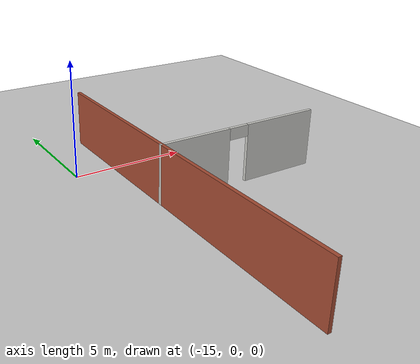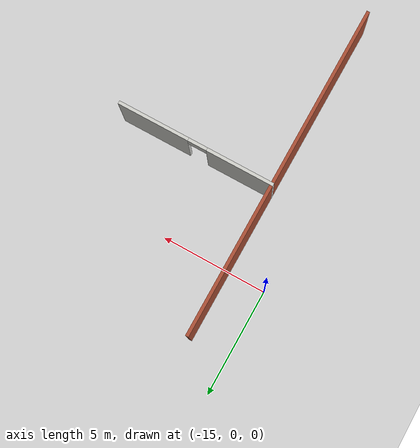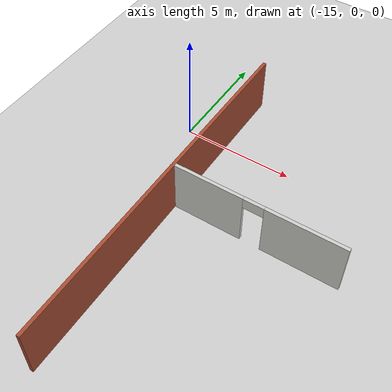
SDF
<sdf version="1.7">
 <world name="default">
  <model name="ground_plane">
   <static>1</static>
   <link name="link">
    <collision name="collision">
     <geometry><plane><normal>0 0 1</normal><size>100 100</size></plane></geometry>
     <surface>
      <contact><collide_bitmask>65535</collide_bitmask></contact>
      <friction><ode><mu>100</mu><mu2>50</mu2></ode></friction>
     </surface>
    </collision>
    <visual name="visual">
     <cast_shadows>0</cast_shadows>
     <geometry><plane><normal>0 0 1</normal><size>100 100</size></plane></geometry>
     <material>
      <script><uri>file://media/materials/scripts/gazebo.material</uri><name>Gazebo/Grey</name></script>
     </material>
    </visual>
   </link>
  </model>
  <model name="newworld">
   <link name="Wall_37">
    <pose>-13.3996 -5.55678 0 0 0 -1.5708</pose>
    <visual name="Wall_37_Visual">
     <pose>0 0 1.25 0 -0 0</pose>
     <geometry><box><size>16 0.15 2.5</size></box></geometry>
     <material>
      <script><uri>file://media/materials/scripts/gazebo.material</uri><name>Gazebo/Bricks</name></script>
      <ambient>1 1 1 1</ambient>
      <shader type="pixel"/>
     </material>
     <meta><layer>0</layer></meta>
    </visual>
    <collision name="Wall_37_Collision">
     <pose>0 0 1.25 0 -0 0</pose>
     <geometry><box><size>16 0.15 2.5</size></box></geometry>
     <surface>
      <friction>
       <ode><mu>1</mu><mu2>1</mu2><fdir1>0 0 0</fdir1><slip1>0</slip1><slip2>0</slip2></ode>
       <torsional>
        <coefficient>1</coefficient>
        <patch_radius>0</patch_radius>
        <surface_radius>0</surface_radius>
        <use_patch_radius>1</use_patch_radius>
        <ode><slip>0</slip></ode>
       </torsional>
      </friction>
      <bounce><restitution_coefficient>0</restitution_coefficient><threshold>1e+06</threshold></bounce>
      <contact>
       <collide_without_contact>0</collide_without_contact>
       <collide_without_contact_bitmask>1</collide_without_contact_bitmask>
       <collide_bitmask>1</collide_bitmask>
       <ode>
        <soft_cfm>0</soft_cfm>
        <soft_erp>0.2</soft_erp>
        <kp>1e+13</kp>
        <kd>1</kd>
        <max_vel>0.01</max_vel>
        <min_depth>0</min_depth>
       </ode>
       <bullet>
        <split_impulse>1</split_impulse>
        <split_impulse_penetration_threshold>-0.01</split_impulse_penetration_threshold>
        <soft_cfm>0</soft_cfm>
        <soft_erp>0.2</soft_erp>
        <kp>1e+13</kp>
        <kd>1</kd>
       </bullet>
      </contact>
     </surface>
    </collision>
   </link>
   <link name="Wall_55">
    <pose>-9.72463 -4.77778 0 0 -0 3.14159</pose>
    <visual name="Wall_55_Visual_0">
     <pose>-2.04956 0 1.25 0 -0 0</pose>
     <geometry><box><size>3.40088 0.15 2.5</size></box></geometry>
     <material>
      <script><uri>file://media/materials/scripts/gazebo.material</uri><name>Gazebo/CeilingTiled</name></script>
      <ambient>0.996078 0.47451 0.0196078 1</ambient>
      <shader type="pixel"/>
     </material>
     <meta><layer>0</layer></meta>
    </visual>
    <visual name="Wall_55_Visual_1">
     <pose>2.15044 0 1.25 0 -0 0</pose>
     <geometry><box><size>3.19912 0.15 2.5</size></box></geometry>
     <material>
      <script><uri>file://media/materials/scripts/gazebo.material</uri><name>Gazebo/CeilingTiled</name></script>
      <ambient>0.996078 0.47451 0.0196078 1</ambient>
      <shader type="pixel"/>
     </material>
     <meta><layer>0</layer></meta>
    </visual>
    <visual name="Wall_55_Visual_2">
     <pose>0.100878 0 2.25 0 -0 0</pose>
     <geometry><box><size>0.9 0.15 0.5</size></box></geometry>
     <material>
      <script><uri>file://media/materials/scripts/gazebo.material</uri><name>Gazebo/CeilingTiled</name></script>
      <ambient>0.996078 0.47451 0.0196078 1</ambient>
      <shader type="pixel"/>
     </material>
     <meta><layer>0</layer></meta>
    </visual>
    <collision name="Wall_55_Collision_1">
     <pose>2.15044 0 1.25 0 -0 0</pose>
     <geometry><box><size>3.19912 0.15 2.5</size></box></geometry>
     <surface>
      <friction>
       <ode><mu>1</mu><mu2>1</mu2><fdir1>0 0 0</fdir1><slip1>0</slip1><slip2>0</slip2></ode>
       <torsional>
        <coefficient>1</coefficient>
        <patch_radius>0</patch_radius>
        <surface_radius>0</surface_radius>
        <use_patch_radius>1</use_patch_radius>
        <ode><slip>0</slip></ode>
       </torsional>
      </friction>
      <bounce><restitution_coefficient>0</restitution_coefficient><threshold>1e+06</threshold></bounce>
      <contact>
       <collide_without_contact>0</collide_without_contact>
       <collide_without_contact_bitmask>1</collide_without_contact_bitmask>
       <collide_bitmask>1</collide_bitmask>
       <ode>
        <soft_cfm>0</soft_cfm>
        <soft_erp>0.2</soft_erp>
        <kp>1e+13</kp>
        <kd>1</kd>
        <max_vel>0.01</max_vel>
        <min_depth>0</min_depth>
       </ode>
       <bullet>
        <split_impulse>1</split_impulse>
        <split_impulse_penetration_threshold>-0.01</split_impulse_penetration_threshold>
        <soft_cfm>0</soft_cfm>
        <soft_erp>0.2</soft_erp>
        <kp>1e+13</kp>
        <kd>1</kd>
       </bullet>
      </contact>
     </surface>
    </collision>
    <collision name="Wall_55_Collision_0">
     <pose>-2.04956 0 1.25 0 -0 0</pose>
     <geometry><box><size>3.40088 0.15 2.5</size></box></geometry>
     <surface>
      <friction>
       <ode><mu>1</mu><mu2>1</mu2><fdir1>0 0 0</fdir1><slip1>0</slip1><slip2>0</slip2></ode>
       <torsional>
        <coefficient>1</coefficient>
        <patch_radius>0</patch_radius>
        <surface_radius>0</surface_radius>
        <use_patch_radius>1</use_patch_radius>
        <ode><slip>0</slip></ode>
       </torsional>
      </friction>
      <bounce><restitution_coefficient>0</restitution_coefficient><threshold>1e+06</threshold></bounce>
      <contact>
       <collide_without_contact>0</collide_without_contact>
       <collide_without_contact_bitmask>1</collide_without_contact_bitmask>
       <collide_bitmask>1</collide_bitmask>
       <ode>
        <soft_cfm>0</soft_cfm>
        <soft_erp>0.2</soft_erp>
        <kp>1e+13</kp>
        <kd>1</kd>
        <max_vel>0.01</max_vel>
        <min_depth>0</min_depth>
       </ode>
       <bullet>
        <split_impulse>1</split_impulse>
        <split_impulse_penetration_threshold>-0.01</split_impulse_penetration_threshold>
        <soft_cfm>0</soft_cfm>
        <soft_erp>0.2</soft_erp>
        <kp>1e+13</kp>
        <kd>1</kd>
       </bullet>
      </contact>
     </surface>
    </collision>
    <collision name="Wall_55_Collision_2">
     <pose>0.100878 0 2.25 0 -0 0</pose>
     <geometry><box><size>0.9 0.15 0.5</size></box></geometry>
     <surface>
      <friction>
       <ode><mu>1</mu><mu2>1</mu2><fdir1>0 0 0</fdir1><slip1>0</slip1><slip2>0</slip2></ode>
       <torsional>
        <coefficient>1</coefficient>
        <patch_radius>0</patch_radius>
        <surface_radius>0</surface_radius>
        <use_patch_radius>1</use_patch_radius>
        <ode><slip>0</slip></ode>
       </torsional>
      </friction>
      <bounce><restitution_coefficient>0</restitution_coefficient><threshold>1e+06</threshold></bounce>
      <contact>
       <collide_without_contact>0</collide_without_contact>
       <collide_without_contact_bitmask>1</collide_without_contact_bitmask>
       <collide_bitmask>1</collide_bitmask>
       <ode>
        <soft_cfm>0</soft_cfm>
        <soft_erp>0.2</soft_erp>
        <kp>1e+13</kp>
        <kd>1</kd>
        <max_vel>0.01</max_vel>
        <min_depth>0</min_depth>
       </ode>
       <bullet>
        <split_impulse>1</split_impulse>
        <split_impulse_penetration_threshold>-0.01</split_impulse_penetration_threshold>
        <soft_cfm>0</soft_cfm>
        <soft_erp>0.2</soft_erp>
        <kp>1e+13</kp>
        <kd>1</kd>
       </bullet>
      </contact>
     </surface>
    </collision>
   </link>
   <static>1</static>
   <pose>0.193711 0.903984 0 0 -0 0</pose>
  </model>
 </world>
</sdf>
